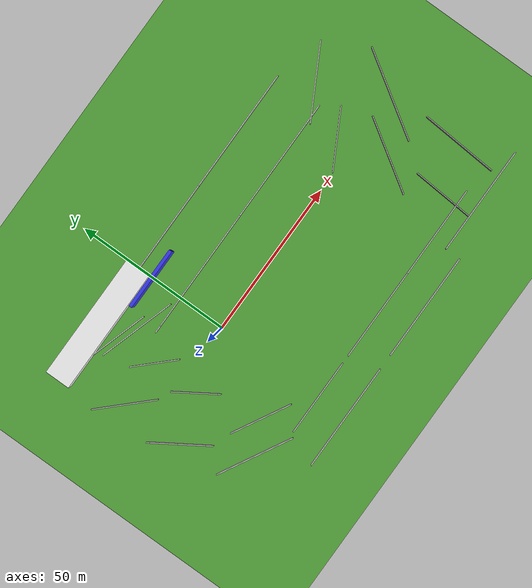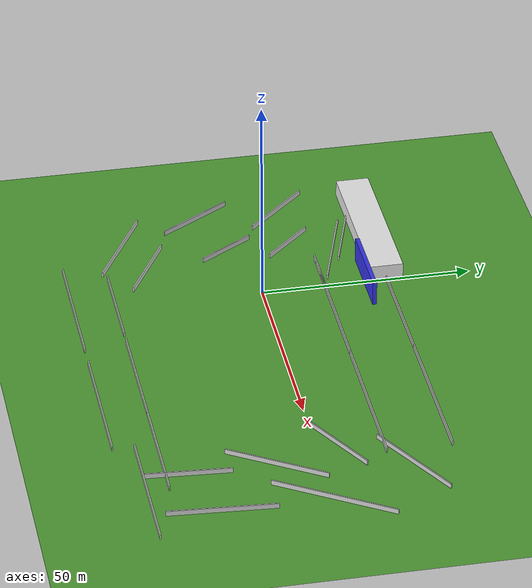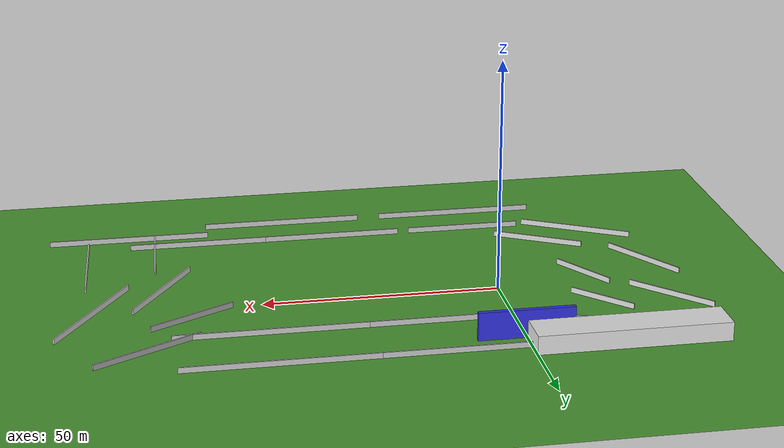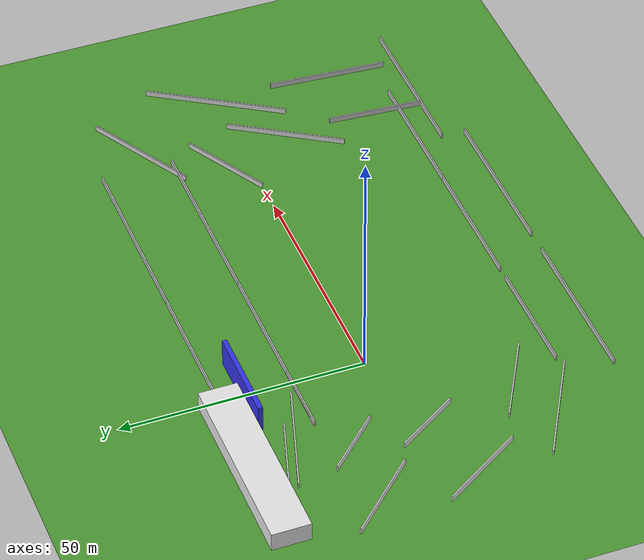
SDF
<sdf version="1.6">
 <world name="spielberg_f1_circuit">
  <physics name="ode_physics" default="0" type="ode">
   <max_step_size>0.001</max_step_size>
   <real_time_factor>1.0</real_time_factor>
   <real_time_update_rate>1000</real_time_update_rate>
  </physics>
  <scene><ambient>0.4 0.4 0.4 1</ambient><background>0.7 0.9 1.0 1</background><shadows>true</shadows></scene>
  <light type="directional" name="sun">
   <pose>0 0 50 0 0 0</pose>
   <diffuse>0.8 0.8 0.8 1</diffuse>
   <specular>0.2 0.2 0.2 1</specular>
   <attenuation>
    <range>1000</range>
    <constant>0.9</constant>
    <linear>0.01</linear>
    <quadratic>0.001</quadratic>
   </attenuation>
   <direction>-0.3 0.3 -1.0</direction>
  </light>
  <light type="directional" name="track_light">
   <cast_shadows>false</cast_shadows>
   <pose>0 0 30 0 0 0</pose>
   <diffuse>0.6 0.6 0.6 1</diffuse>
   <specular>0.1 0.1 0.1 1</specular>
   <direction>0.2 -0.2 -1.0</direction>
  </light>
  <model name="ground_plane">
   <static>true</static>
   <link name="link">
    <collision name="collision">
     <geometry><plane><normal>0 0 1</normal><size>300 200</size></plane></geometry>
     <surface><friction><ode><mu>0.8</mu><mu2>0.8</mu2></ode></friction></surface>
    </collision>
    <visual name="visual">
     <geometry><plane><normal>0 0 1</normal><size>300 200</size></plane></geometry>
     <material>
      <ambient>0.3 0.5 0.2 1</ambient>
      <diffuse>0.3 0.6 0.2 1</diffuse>
      <specular>0.01 0.01 0.01 1</specular>
     </material>
    </visual>
   </link>
  </model>
  <model name="outer_straight_1">
   <static>true</static>
   <pose>10.000 30.000 0.600 0 0 0.000</pose>
   <link name="link">
    <collision name="collision"><geometry><box><size>40.000 0.300 1.200</size></box></geometry></collision>
    <visual name="visual">
     <geometry><box><size>40.000 0.300 1.200</size></box></geometry>
     <material>
      <ambient>0.7 0.7 0.7 1</ambient>
      <diffuse>0.8 0.8 0.8 1</diffuse>
      <specular>0.1 0.1 0.1 1</specular>
     </material>
    </visual>
   </link>
  </model>
  <model name="outer_straight_2">
   <static>true</static>
   <pose>50.000 30.000 0.600 0 0 0.000</pose>
   <link name="link">
    <collision name="collision"><geometry><box><size>40.000 0.300 1.200</size></box></geometry></collision>
    <visual name="visual">
     <geometry><box><size>40.000 0.300 1.200</size></box></geometry>
     <material>
      <ambient>0.7 0.7 0.7 1</ambient>
      <diffuse>0.8 0.8 0.8 1</diffuse>
      <specular>0.1 0.1 0.1 1</specular>
     </material>
    </visual>
   </link>
  </model>
  <model name="outer_turn1_1">
   <static>true</static>
   <pose>75.000 20.000 0.600 0 0 0.500</pose>
   <link name="link">
    <collision name="collision"><geometry><box><size>25.000 0.300 1.200</size></box></geometry></collision>
    <visual name="visual">
     <geometry><box><size>25.000 0.300 1.200</size></box></geometry>
     <material>
      <ambient>0.7 0.7 0.7 1</ambient>
      <diffuse>0.8 0.8 0.8 1</diffuse>
      <specular>0.1 0.1 0.1 1</specular>
     </material>
    </visual>
   </link>
  </model>
  <model name="outer_turn1_2">
   <static>true</static>
   <pose>85.000 0.000 0.600 0 0 1.000</pose>
   <link name="link">
    <collision name="collision"><geometry><box><size>30.000 0.300 1.200</size></box></geometry></collision>
    <visual name="visual">
     <geometry><box><size>30.000 0.300 1.200</size></box></geometry>
     <material>
      <ambient>0.7 0.7 0.7 1</ambient>
      <diffuse>0.8 0.8 0.8 1</diffuse>
      <specular>0.1 0.1 0.1 1</specular>
     </material>
    </visual>
   </link>
  </model>
  <model name="outer_turn1_3">
   <static>true</static>
   <pose>85.000 -25.000 0.600 0 0 1.500</pose>
   <link name="link">
    <collision name="collision"><geometry><box><size>25.000 0.300 1.200</size></box></geometry></collision>
    <visual name="visual">
     <geometry><box><size>25.000 0.300 1.200</size></box></geometry>
     <material>
      <ambient>0.7 0.7 0.7 1</ambient>
      <diffuse>0.8 0.8 0.8 1</diffuse>
      <specular>0.1 0.1 0.1 1</specular>
     </material>
    </visual>
   </link>
  </model>
  <model name="outer_back_1">
   <static>true</static>
   <pose>75.000 -40.000 0.600 0 0 0.000</pose>
   <link name="link">
    <collision name="collision"><geometry><box><size>35.000 0.300 1.200</size></box></geometry></collision>
    <visual name="visual">
     <geometry><box><size>35.000 0.300 1.200</size></box></geometry>
     <material>
      <ambient>0.7 0.7 0.7 1</ambient>
      <diffuse>0.8 0.8 0.8 1</diffuse>
      <specular>0.1 0.1 0.1 1</specular>
     </material>
    </visual>
   </link>
  </model>
  <model name="outer_back_2">
   <static>true</static>
   <pose>40.000 -45.000 0.600 0 0 0.000</pose>
   <link name="link">
    <collision name="collision"><geometry><box><size>35.000 0.300 1.200</size></box></geometry></collision>
    <visual name="visual">
     <geometry><box><size>35.000 0.300 1.200</size></box></geometry>
     <material>
      <ambient>0.7 0.7 0.7 1</ambient>
      <diffuse>0.8 0.8 0.8 1</diffuse>
      <specular>0.1 0.1 0.1 1</specular>
     </material>
    </visual>
   </link>
  </model>
  <model name="outer_back_3">
   <static>true</static>
   <pose>0.000 -45.000 0.600 0 0 0.000</pose>
   <link name="link">
    <collision name="collision"><geometry><box><size>35.000 0.300 1.200</size></box></geometry></collision>
    <visual name="visual">
     <geometry><box><size>35.000 0.300 1.200</size></box></geometry>
     <material>
      <ambient>0.7 0.7 0.7 1</ambient>
      <diffuse>0.8 0.8 0.8 1</diffuse>
      <specular>0.1 0.1 0.1 1</specular>
     </material>
    </visual>
   </link>
  </model>
  <model name="outer_turn4_1">
   <static>true</static>
   <pose>-25.000 -30.000 0.600 0 0 -0.500</pose>
   <link name="link">
    <collision name="collision"><geometry><box><size>25.000 0.300 1.200</size></box></geometry></collision>
    <visual name="visual">
     <geometry><box><size>25.000 0.300 1.200</size></box></geometry>
     <material>
      <ambient>0.7 0.7 0.7 1</ambient>
      <diffuse>0.8 0.8 0.8 1</diffuse>
      <specular>0.1 0.1 0.1 1</specular>
     </material>
    </visual>
   </link>
  </model>
  <model name="outer_turn4_2">
   <static>true</static>
   <pose>-35.000 -10.000 0.600 0 0 -1.000</pose>
   <link name="link">
    <collision name="collision"><geometry><box><size>20.000 0.300 1.200</size></box></geometry></collision>
    <visual name="visual">
     <geometry><box><size>20.000 0.300 1.200</size></box></geometry>
     <material>
      <ambient>0.7 0.7 0.7 1</ambient>
      <diffuse>0.8 0.8 0.8 1</diffuse>
      <specular>0.1 0.1 0.1 1</specular>
     </material>
    </visual>
   </link>
  </model>
  <model name="outer_turn5_1">
   <static>true</static>
   <pose>-35.000 10.000 0.600 0 0 -0.800</pose>
   <link name="link">
    <collision name="collision"><geometry><box><size>20.000 0.300 1.200</size></box></geometry></collision>
    <visual name="visual">
     <geometry><box><size>20.000 0.300 1.200</size></box></geometry>
     <material>
      <ambient>0.7 0.7 0.7 1</ambient>
      <diffuse>0.8 0.8 0.8 1</diffuse>
      <specular>0.1 0.1 0.1 1</specular>
     </material>
    </visual>
   </link>
  </model>
  <model name="outer_turn6_1">
   <static>true</static>
   <pose>-25.000 25.000 0.600 0 0 -0.300</pose>
   <link name="link">
    <collision name="collision"><geometry><box><size>30.000 0.300 1.200</size></box></geometry></collision>
    <visual name="visual">
     <geometry><box><size>30.000 0.300 1.200</size></box></geometry>
     <material>
      <ambient>0.7 0.7 0.7 1</ambient>
      <diffuse>0.8 0.8 0.8 1</diffuse>
      <specular>0.1 0.1 0.1 1</specular>
     </material>
    </visual>
   </link>
  </model>
  <model name="outer_final_1">
   <static>true</static>
   <pose>-10.000 30.000 0.600 0 0 0.000</pose>
   <link name="link">
    <collision name="collision"><geometry><box><size>20.000 0.300 1.200</size></box></geometry></collision>
    <visual name="visual">
     <geometry><box><size>20.000 0.300 1.200</size></box></geometry>
     <material>
      <ambient>0.7 0.7 0.7 1</ambient>
      <diffuse>0.8 0.8 0.8 1</diffuse>
      <specular>0.1 0.1 0.1 1</specular>
     </material>
    </visual>
   </link>
  </model>
  <model name="inner_straight_1">
   <static>true</static>
   <pose>10.000 15.000 0.600 0 0 0.000</pose>
   <link name="link">
    <collision name="collision"><geometry><box><size>40.000 0.300 1.200</size></box></geometry></collision>
    <visual name="visual">
     <geometry><box><size>40.000 0.300 1.200</size></box></geometry>
     <material>
      <ambient>0.7 0.7 0.7 1</ambient>
      <diffuse>0.8 0.8 0.8 1</diffuse>
      <specular>0.1 0.1 0.1 1</specular>
     </material>
    </visual>
   </link>
  </model>
  <model name="inner_straight_2">
   <static>true</static>
   <pose>50.000 15.000 0.600 0 0 0.000</pose>
   <link name="link">
    <collision name="collision"><geometry><box><size>40.000 0.300 1.200</size></box></geometry></collision>
    <visual name="visual">
     <geometry><box><size>40.000 0.300 1.200</size></box></geometry>
     <material>
      <ambient>0.7 0.7 0.7 1</ambient>
      <diffuse>0.8 0.8 0.8 1</diffuse>
      <specular>0.1 0.1 0.1 1</specular>
     </material>
    </visual>
   </link>
  </model>
  <model name="inner_turn1_1">
   <static>true</static>
   <pose>65.000 5.000 0.600 0 0 0.500</pose>
   <link name="link">
    <collision name="collision"><geometry><box><size>20.000 0.300 1.200</size></box></geometry></collision>
    <visual name="visual">
     <geometry><box><size>20.000 0.300 1.200</size></box></geometry>
     <material>
      <ambient>0.7 0.7 0.7 1</ambient>
      <diffuse>0.8 0.8 0.8 1</diffuse>
      <specular>0.1 0.1 0.1 1</specular>
     </material>
    </visual>
   </link>
  </model>
  <model name="inner_turn1_2">
   <static>true</static>
   <pose>70.000 -10.000 0.600 0 0 1.000</pose>
   <link name="link">
    <collision name="collision"><geometry><box><size>25.000 0.300 1.200</size></box></geometry></collision>
    <visual name="visual">
     <geometry><box><size>25.000 0.300 1.200</size></box></geometry>
     <material>
      <ambient>0.7 0.7 0.7 1</ambient>
      <diffuse>0.8 0.8 0.8 1</diffuse>
      <specular>0.1 0.1 0.1 1</specular>
     </material>
    </visual>
   </link>
  </model>
  <model name="inner_turn1_3">
   <static>true</static>
   <pose>70.000 -30.000 0.600 0 0 1.500</pose>
   <link name="link">
    <collision name="collision"><geometry><box><size>20.000 0.300 1.200</size></box></geometry></collision>
    <visual name="visual">
     <geometry><box><size>20.000 0.300 1.200</size></box></geometry>
     <material>
      <ambient>0.7 0.7 0.7 1</ambient>
      <diffuse>0.8 0.8 0.8 1</diffuse>
      <specular>0.1 0.1 0.1 1</specular>
     </material>
    </visual>
   </link>
  </model>
  <model name="inner_back_1">
   <static>true</static>
   <pose>60.000 -35.000 0.600 0 0 0.000</pose>
   <link name="link">
    <collision name="collision"><geometry><box><size>30.000 0.300 1.200</size></box></geometry></collision>
    <visual name="visual">
     <geometry><box><size>30.000 0.300 1.200</size></box></geometry>
     <material>
      <ambient>0.7 0.7 0.7 1</ambient>
      <diffuse>0.8 0.8 0.8 1</diffuse>
      <specular>0.1 0.1 0.1 1</specular>
     </material>
    </visual>
   </link>
  </model>
  <model name="inner_back_2">
   <static>true</static>
   <pose>30.000 -35.000 0.600 0 0 0.000</pose>
   <link name="link">
    <collision name="collision"><geometry><box><size>30.000 0.300 1.200</size></box></geometry></collision>
    <visual name="visual">
     <geometry><box><size>30.000 0.300 1.200</size></box></geometry>
     <material>
      <ambient>0.7 0.7 0.7 1</ambient>
      <diffuse>0.8 0.8 0.8 1</diffuse>
      <specular>0.1 0.1 0.1 1</specular>
     </material>
    </visual>
   </link>
  </model>
  <model name="inner_back_3">
   <static>true</static>
   <pose>0.000 -35.000 0.600 0 0 0.000</pose>
   <link name="link">
    <collision name="collision"><geometry><box><size>25.000 0.300 1.200</size></box></geometry></collision>
    <visual name="visual">
     <geometry><box><size>25.000 0.300 1.200</size></box></geometry>
     <material>
      <ambient>0.7 0.7 0.7 1</ambient>
      <diffuse>0.8 0.8 0.8 1</diffuse>
      <specular>0.1 0.1 0.1 1</specular>
     </material>
    </visual>
   </link>
  </model>
  <model name="inner_turn4_1">
   <static>true</static>
   <pose>-15.000 -25.000 0.600 0 0 -0.500</pose>
   <link name="link">
    <collision name="collision"><geometry><box><size>20.000 0.300 1.200</size></box></geometry></collision>
    <visual name="visual">
     <geometry><box><size>20.000 0.300 1.200</size></box></geometry>
     <material>
      <ambient>0.7 0.7 0.7 1</ambient>
      <diffuse>0.8 0.8 0.8 1</diffuse>
      <specular>0.1 0.1 0.1 1</specular>
     </material>
    </visual>
   </link>
  </model>
  <model name="inner_turn4_2">
   <static>true</static>
   <pose>-20.000 -5.000 0.600 0 0 -1.000</pose>
   <link name="link">
    <collision name="collision"><geometry><box><size>15.000 0.300 1.200</size></box></geometry></collision>
    <visual name="visual">
     <geometry><box><size>15.000 0.300 1.200</size></box></geometry>
     <material>
      <ambient>0.7 0.7 0.7 1</ambient>
      <diffuse>0.8 0.8 0.8 1</diffuse>
      <specular>0.1 0.1 0.1 1</specular>
     </material>
    </visual>
   </link>
  </model>
  <model name="inner_turn5_1">
   <static>true</static>
   <pose>-20.000 10.000 0.600 0 0 -0.800</pose>
   <link name="link">
    <collision name="collision"><geometry><box><size>15.000 0.300 1.200</size></box></geometry></collision>
    <visual name="visual">
     <geometry><box><size>15.000 0.300 1.200</size></box></geometry>
     <material>
      <ambient>0.7 0.7 0.7 1</ambient>
      <diffuse>0.8 0.8 0.8 1</diffuse>
      <specular>0.1 0.1 0.1 1</specular>
     </material>
    </visual>
   </link>
  </model>
  <model name="inner_turn6_1">
   <static>true</static>
   <pose>-15.000 20.000 0.600 0 0 -0.300</pose>
   <link name="link">
    <collision name="collision"><geometry><box><size>25.000 0.300 1.200</size></box></geometry></collision>
    <visual name="visual">
     <geometry><box><size>25.000 0.300 1.200</size></box></geometry>
     <material>
      <ambient>0.7 0.7 0.7 1</ambient>
      <diffuse>0.8 0.8 0.8 1</diffuse>
      <specular>0.1 0.1 0.1 1</specular>
     </material>
    </visual>
   </link>
  </model>
  <model name="inner_final_1">
   <static>true</static>
   <pose>-5.000 15.000 0.600 0 0 0.000</pose>
   <link name="link">
    <collision name="collision"><geometry><box><size>15.000 0.300 1.200</size></box></geometry></collision>
    <visual name="visual">
     <geometry><box><size>15.000 0.300 1.200</size></box></geometry>
     <material>
      <ambient>0.7 0.7 0.7 1</ambient>
      <diffuse>0.8 0.8 0.8 1</diffuse>
      <specular>0.1 0.1 0.1 1</specular>
     </material>
    </visual>
   </link>
  </model>
  <model name="pit_building">
   <static>true</static>
   <pose>-20 30 2 0 0 0</pose>
   <link name="link">
    <collision name="collision"><geometry><box><size>40 8 4</size></box></geometry></collision>
    <visual name="visual">
     <geometry><box><size>40 8 4</size></box></geometry>
     <material>
      <ambient>0.8 0.8 0.8 1</ambient>
      <diffuse>0.9 0.9 0.9 1</diffuse>
      <specular>0.2 0.2 0.2 1</specular>
     </material>
    </visual>
   </link>
  </model>
  <model name="start_finish_gantry">
   <static>true</static>
   <pose>0 25 3 0 0 0</pose>
   <link name="link">
    <collision name="collision"><geometry><box><size>20 1 6</size></box></geometry></collision>
    <visual name="visual">
     <geometry><box><size>20 1 6</size></box></geometry>
     <material>
      <ambient>0.1 0.1 0.8 1</ambient>
      <diffuse>0.2 0.2 0.9 1</diffuse>
      <specular>0.3 0.3 0.3 1</specular>
     </material>
    </visual>
   </link>
  </model>
 </world>
</sdf>
